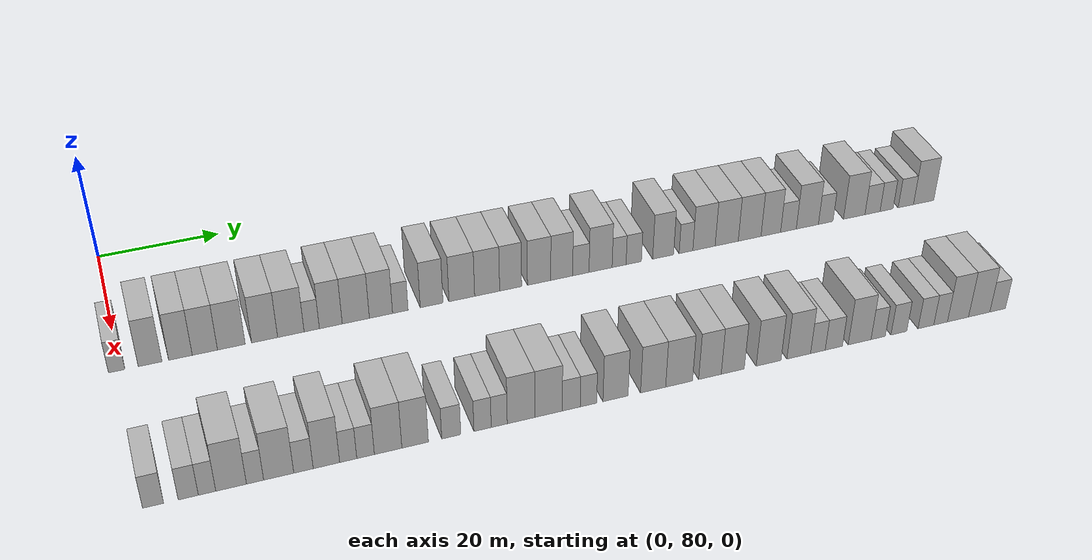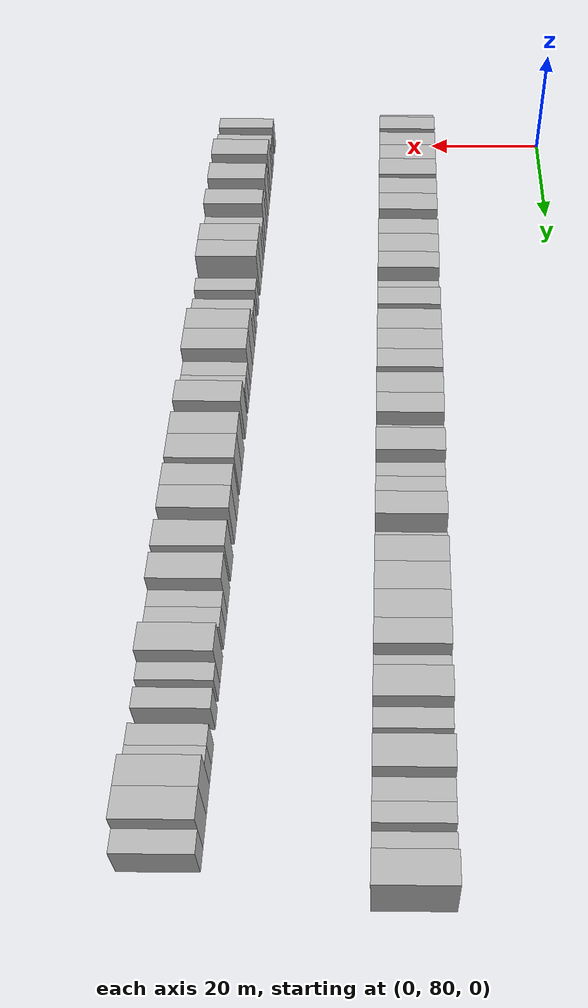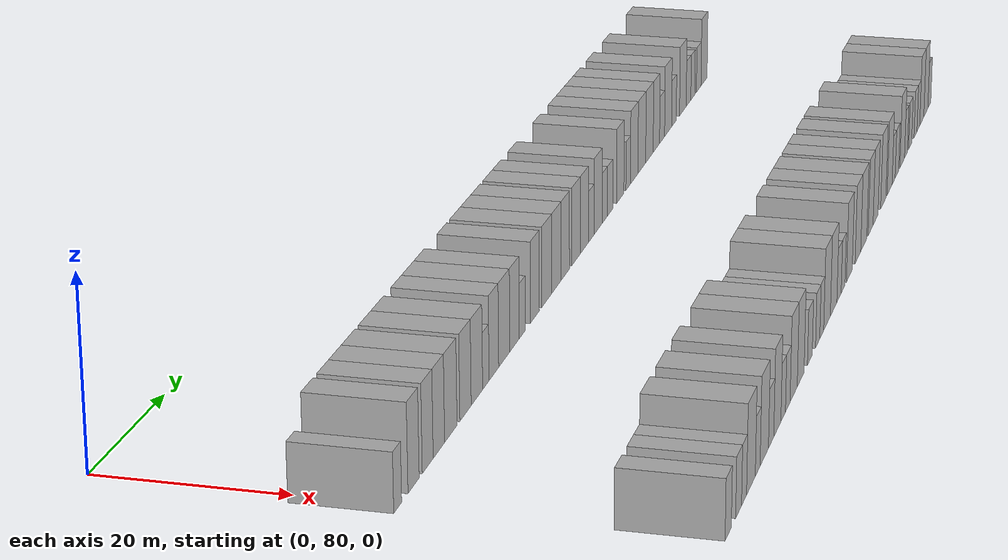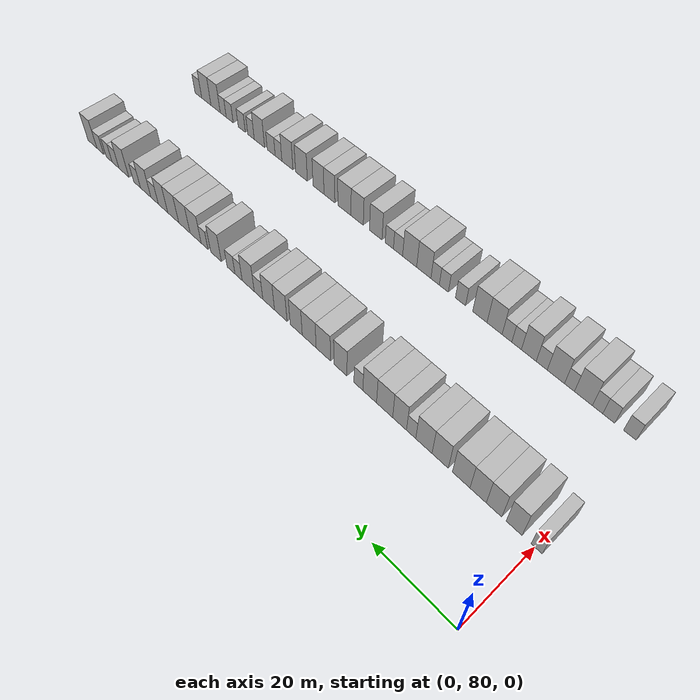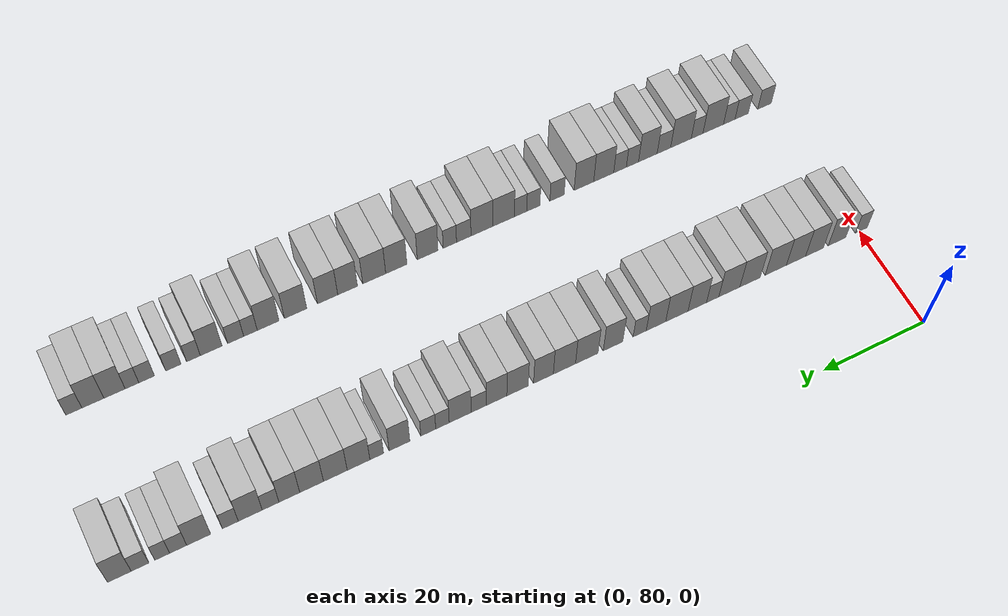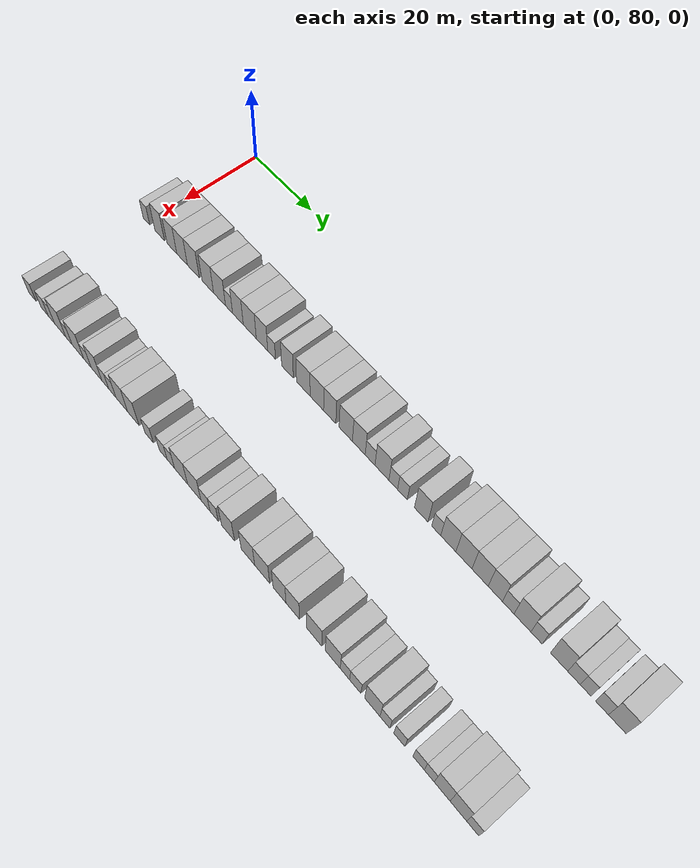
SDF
<sdf version="1.6">
 <world name="default">
  <model name="building_127">
   <static>1</static>
   <pose>25.0000 79.5850 0 0.000000 0.000000 0.000000</pose>
   <link name="link">
    <pose>0 0 3.00 0 0 0</pose>
    <collision name="collision"><geometry><box><size>10.0000 2.4742 6.0000</size></box></geometry></collision>
    <visual name="visual">
     <cast_shadows>0</cast_shadows>
     <geometry><box><size>10.0000 2.4742 6.0000</size></box></geometry>
     <material>
      <script>
       <uri>model://HANNAS_wall/materials/scripts</uri>
       <uri>model://HANNAS_wall/materials/textures</uri>
       <name>vrc/HANNAS_wall</name>
      </script>
     </material>
    </visual>
   </link>
  </model>
  <model name="building_128">
   <static>1</static>
   <pose>25.0000 84.6285 0 0.000000 0.000000 0.000000</pose>
   <link name="link">
    <pose>0 0 4.50 0 0 0</pose>
    <collision name="collision"><geometry><box><size>10.0000 3.6128 9.0000</size></box></geometry></collision>
    <visual name="visual">
     <cast_shadows>0</cast_shadows>
     <geometry><box><size>10.0000 3.6128 9.0000</size></box></geometry>
     <material>
      <script>
       <uri>model://HANNAS_wall/materials/scripts</uri>
       <uri>model://HANNAS_wall/materials/textures</uri>
       <name>vrc/HANNAS_wall</name>
      </script>
     </material>
    </visual>
   </link>
  </model>
  <model name="building_129">
   <static>1</static>
   <pose>25.0000 89.2453 0 0.000000 0.000000 0.000000</pose>
   <link name="link">
    <pose>0 0 4.50 0 0 0</pose>
    <collision name="collision"><geometry><box><size>10.0000 3.6209 9.0000</size></box></geometry></collision>
    <visual name="visual">
     <cast_shadows>0</cast_shadows>
     <geometry><box><size>10.0000 3.6209 9.0000</size></box></geometry>
     <material>
      <script>
       <uri>model://HANNAS_wall/materials/scripts</uri>
       <uri>model://HANNAS_wall/materials/textures</uri>
       <name>vrc/HANNAS_wall</name>
      </script>
     </material>
    </visual>
   </link>
  </model>
  <model name="building_130">
   <static>1</static>
   <pose>25.0000 93.0009 0 0.000000 0.000000 0.000000</pose>
   <link name="link">
    <pose>0 0 4.50 0 0 0</pose>
    <collision name="collision"><geometry><box><size>10.0000 3.8902 9.0000</size></box></geometry></collision>
    <visual name="visual">
     <cast_shadows>0</cast_shadows>
     <geometry><box><size>10.0000 3.8902 9.0000</size></box></geometry>
     <material>
      <script>
       <uri>model://HANNAS_wall/materials/scripts</uri>
       <uri>model://HANNAS_wall/materials/textures</uri>
       <name>vrc/HANNAS_wall</name>
      </script>
     </material>
    </visual>
   </link>
  </model>
  <model name="building_131">
   <static>1</static>
   <pose>25.0000 97.1014 0 0.000000 0.000000 0.000000</pose>
   <link name="link">
    <pose>0 0 4.50 0 0 0</pose>
    <collision name="collision"><geometry><box><size>10.0000 4.3108 9.0000</size></box></geometry></collision>
    <visual name="visual">
     <cast_shadows>0</cast_shadows>
     <geometry><box><size>10.0000 4.3108 9.0000</size></box></geometry>
     <material>
      <script>
       <uri>model://HANNAS_wall/materials/scripts</uri>
       <uri>model://HANNAS_wall/materials/textures</uri>
       <name>vrc/HANNAS_wall</name>
      </script>
     </material>
    </visual>
   </link>
  </model>
  <model name="building_132">
   <static>1</static>
   <pose>25.0000 102.2980 0 0.000000 0.000000 0.000000</pose>
   <link name="link">
    <pose>0 0 4.50 0 0 0</pose>
    <collision name="collision"><geometry><box><size>10.0000 4.0825 9.0000</size></box></geometry></collision>
    <visual name="visual">
     <cast_shadows>0</cast_shadows>
     <geometry><box><size>10.0000 4.0825 9.0000</size></box></geometry>
     <material>
      <script>
       <uri>model://HANNAS_wall/materials/scripts</uri>
       <uri>model://HANNAS_wall/materials/textures</uri>
       <name>vrc/HANNAS_wall</name>
      </script>
     </material>
    </visual>
   </link>
  </model>
  <model name="building_133">
   <static>1</static>
   <pose>25.0000 106.4385 0 0.000000 0.000000 0.000000</pose>
   <link name="link">
    <pose>0 0 4.50 0 0 0</pose>
    <collision name="collision"><geometry><box><size>10.0000 4.1985 9.0000</size></box></geometry></collision>
    <visual name="visual">
     <cast_shadows>0</cast_shadows>
     <geometry><box><size>10.0000 4.1985 9.0000</size></box></geometry>
     <material>
      <script>
       <uri>model://HANNAS_wall/materials/scripts</uri>
       <uri>model://HANNAS_wall/materials/textures</uri>
       <name>vrc/HANNAS_wall</name>
      </script>
     </material>
    </visual>
   </link>
  </model>
  <model name="building_134">
   <static>1</static>
   <pose>25.0000 109.7570 0 0.000000 0.000000 0.000000</pose>
   <link name="link">
    <pose>0 0 3.00 0 0 0</pose>
    <collision name="collision"><geometry><box><size>10.0000 2.4384 6.0000</size></box></geometry></collision>
    <visual name="visual">
     <cast_shadows>0</cast_shadows>
     <geometry><box><size>10.0000 2.4384 6.0000</size></box></geometry>
     <material>
      <script>
       <uri>model://HANNAS_wall/materials/scripts</uri>
       <uri>model://HANNAS_wall/materials/textures</uri>
       <name>vrc/HANNAS_wall</name>
      </script>
     </material>
    </visual>
   </link>
  </model>
  <model name="building_135">
   <static>1</static>
   <pose>25.0000 112.8140 0 0.000000 0.000000 0.000000</pose>
   <link name="link">
    <pose>0 0 4.50 0 0 0</pose>
    <collision name="collision"><geometry><box><size>10.0000 3.6756 9.0000</size></box></geometry></collision>
    <visual name="visual">
     <cast_shadows>0</cast_shadows>
     <geometry><box><size>10.0000 3.6756 9.0000</size></box></geometry>
     <material>
      <script>
       <uri>model://HANNAS_wall/materials/scripts</uri>
       <uri>model://HANNAS_wall/materials/textures</uri>
       <name>vrc/HANNAS_wall</name>
      </script>
     </material>
    </visual>
   </link>
  </model>
  <model name="building_136">
   <static>1</static>
   <pose>25.0000 116.8435 0 0.000000 0.000000 0.000000</pose>
   <link name="link">
    <pose>0 0 4.50 0 0 0</pose>
    <collision name="collision"><geometry><box><size>10.0000 4.3834 9.0000</size></box></geometry></collision>
    <visual name="visual">
     <cast_shadows>0</cast_shadows>
     <geometry><box><size>10.0000 4.3834 9.0000</size></box></geometry>
     <material>
      <script>
       <uri>model://HANNAS_wall/materials/scripts</uri>
       <uri>model://HANNAS_wall/materials/textures</uri>
       <name>vrc/HANNAS_wall</name>
      </script>
     </material>
    </visual>
   </link>
  </model>
  <model name="building_137">
   <static>1</static>
   <pose>25.0000 120.9303 0 0.000000 0.000000 0.000000</pose>
   <link name="link">
    <pose>0 0 4.50 0 0 0</pose>
    <collision name="collision"><geometry><box><size>10.0000 3.7903 9.0000</size></box></geometry></collision>
    <visual name="visual">
     <cast_shadows>0</cast_shadows>
     <geometry><box><size>10.0000 3.7903 9.0000</size></box></geometry>
     <material>
      <script>
       <uri>model://HANNAS_wall/materials/scripts</uri>
       <uri>model://HANNAS_wall/materials/textures</uri>
       <name>vrc/HANNAS_wall</name>
      </script>
     </material>
    </visual>
   </link>
  </model>
  <model name="building_138">
   <static>1</static>
   <pose>25.0000 124.0998 0 0.000000 0.000000 0.000000</pose>
   <link name="link">
    <pose>0 0 3.00 0 0 0</pose>
    <collision name="collision"><geometry><box><size>10.0000 2.5487 6.0000</size></box></geometry></collision>
    <visual name="visual">
     <cast_shadows>0</cast_shadows>
     <geometry><box><size>10.0000 2.5487 6.0000</size></box></geometry>
     <material>
      <script>
       <uri>model://HANNAS_wall/materials/scripts</uri>
       <uri>model://HANNAS_wall/materials/textures</uri>
       <name>vrc/HANNAS_wall</name>
      </script>
     </material>
    </visual>
   </link>
  </model>
  <model name="building_139">
   <static>1</static>
   <pose>25.0000 129.2617 0 0.000000 0.000000 0.000000</pose>
   <link name="link">
    <pose>0 0 4.50 0 0 0</pose>
    <collision name="collision"><geometry><box><size>10.0000 3.7751 9.0000</size></box></geometry></collision>
    <visual name="visual">
     <cast_shadows>0</cast_shadows>
     <geometry><box><size>10.0000 3.7751 9.0000</size></box></geometry>
     <material>
      <script>
       <uri>model://HANNAS_wall/materials/scripts</uri>
       <uri>model://HANNAS_wall/materials/textures</uri>
       <name>vrc/HANNAS_wall</name>
      </script>
     </material>
    </visual>
   </link>
  </model>
  <model name="building_140">
   <static>1</static>
   <pose>25.0000 134.3005 0 0.000000 0.000000 0.000000</pose>
   <link name="link">
    <pose>0 0 4.50 0 0 0</pose>
    <collision name="collision"><geometry><box><size>10.0000 4.3025 9.0000</size></box></geometry></collision>
    <visual name="visual">
     <cast_shadows>0</cast_shadows>
     <geometry><box><size>10.0000 4.3025 9.0000</size></box></geometry>
     <material>
      <script>
       <uri>model://HANNAS_wall/materials/scripts</uri>
       <uri>model://HANNAS_wall/materials/textures</uri>
       <name>vrc/HANNAS_wall</name>
      </script>
     </material>
    </visual>
   </link>
  </model>
  <model name="building_141">
   <static>1</static>
   <pose>25.0000 138.5611 0 0.000000 0.000000 0.000000</pose>
   <link name="link">
    <pose>0 0 4.50 0 0 0</pose>
    <collision name="collision"><geometry><box><size>10.0000 4.2187 9.0000</size></box></geometry></collision>
    <visual name="visual">
     <cast_shadows>0</cast_shadows>
     <geometry><box><size>10.0000 4.2187 9.0000</size></box></geometry>
     <material>
      <script>
       <uri>model://HANNAS_wall/materials/scripts</uri>
       <uri>model://HANNAS_wall/materials/textures</uri>
       <name>vrc/HANNAS_wall</name>
      </script>
     </material>
    </visual>
   </link>
  </model>
  <model name="building_142">
   <static>1</static>
   <pose>25.0000 142.5398 0 0.000000 0.000000 0.000000</pose>
   <link name="link">
    <pose>0 0 4.50 0 0 0</pose>
    <collision name="collision"><geometry><box><size>10.0000 3.7387 9.0000</size></box></geometry></collision>
    <visual name="visual">
     <cast_shadows>0</cast_shadows>
     <geometry><box><size>10.0000 3.7387 9.0000</size></box></geometry>
     <material>
      <script>
       <uri>model://HANNAS_wall/materials/scripts</uri>
       <uri>model://HANNAS_wall/materials/textures</uri>
       <name>vrc/HANNAS_wall</name>
      </script>
     </material>
    </visual>
   </link>
  </model>
  <model name="building_143">
   <static>1</static>
   <pose>25.0000 147.4133 0 0.000000 0.000000 0.000000</pose>
   <link name="link">
    <pose>0 0 4.50 0 0 0</pose>
    <collision name="collision"><geometry><box><size>10.0000 4.0082 9.0000</size></box></geometry></collision>
    <visual name="visual">
     <cast_shadows>0</cast_shadows>
     <geometry><box><size>10.0000 4.0082 9.0000</size></box></geometry>
     <material>
      <script>
       <uri>model://HANNAS_wall/materials/scripts</uri>
       <uri>model://HANNAS_wall/materials/textures</uri>
       <name>vrc/HANNAS_wall</name>
      </script>
     </material>
    </visual>
   </link>
  </model>
  <model name="building_144">
   <static>1</static>
   <pose>25.0000 151.3130 0 0.000000 0.000000 0.000000</pose>
   <link name="link">
    <pose>0 0 4.50 0 0 0</pose>
    <collision name="collision"><geometry><box><size>10.0000 3.7913 9.0000</size></box></geometry></collision>
    <visual name="visual">
     <cast_shadows>0</cast_shadows>
     <geometry><box><size>10.0000 3.7913 9.0000</size></box></geometry>
     <material>
      <script>
       <uri>model://HANNAS_wall/materials/scripts</uri>
       <uri>model://HANNAS_wall/materials/textures</uri>
       <name>vrc/HANNAS_wall</name>
      </script>
     </material>
    </visual>
   </link>
  </model>
  <model name="building_145">
   <static>1</static>
   <pose>25.0000 154.6376 0 0.000000 0.000000 0.000000</pose>
   <link name="link">
    <pose>0 0 3.00 0 0 0</pose>
    <collision name="collision"><geometry><box><size>10.0000 2.8580 6.0000</size></box></geometry></collision>
    <visual name="visual">
     <cast_shadows>0</cast_shadows>
     <geometry><box><size>10.0000 2.8580 6.0000</size></box></geometry>
     <material>
      <script>
       <uri>model://HANNAS_wall/materials/scripts</uri>
       <uri>model://HANNAS_wall/materials/textures</uri>
       <name>vrc/HANNAS_wall</name>
      </script>
     </material>
    </visual>
   </link>
  </model>
  <model name="building_146">
   <static>1</static>
   <pose>25.0000 158.0905 0 0.000000 0.000000 0.000000</pose>
   <link name="link">
    <pose>0 0 4.50 0 0 0</pose>
    <collision name="collision"><geometry><box><size>10.0000 4.0477 9.0000</size></box></geometry></collision>
    <visual name="visual">
     <cast_shadows>0</cast_shadows>
     <geometry><box><size>10.0000 4.0477 9.0000</size></box></geometry>
     <material>
      <script>
       <uri>model://HANNAS_wall/materials/scripts</uri>
       <uri>model://HANNAS_wall/materials/textures</uri>
       <name>vrc/HANNAS_wall</name>
      </script>
     </material>
    </visual>
   </link>
  </model>
  <model name="building_147">
   <static>1</static>
   <pose>25.0000 161.3492 0 0.000000 0.000000 0.000000</pose>
   <link name="link">
    <pose>0 0 3.00 0 0 0</pose>
    <collision name="collision"><geometry><box><size>10.0000 2.4698 6.0000</size></box></geometry></collision>
    <visual name="visual">
     <cast_shadows>0</cast_shadows>
     <geometry><box><size>10.0000 2.4698 6.0000</size></box></geometry>
     <material>
      <script>
       <uri>model://HANNAS_wall/materials/scripts</uri>
       <uri>model://HANNAS_wall/materials/textures</uri>
       <name>vrc/HANNAS_wall</name>
      </script>
     </material>
    </visual>
   </link>
  </model>
  <model name="building_148">
   <static>1</static>
   <pose>25.0000 163.9475 0 0.000000 0.000000 0.000000</pose>
   <link name="link">
    <pose>0 0 3.00 0 0 0</pose>
    <collision name="collision"><geometry><box><size>10.0000 2.7268 6.0000</size></box></geometry></collision>
    <visual name="visual">
     <cast_shadows>0</cast_shadows>
     <geometry><box><size>10.0000 2.7268 6.0000</size></box></geometry>
     <material>
      <script>
       <uri>model://HANNAS_wall/materials/scripts</uri>
       <uri>model://HANNAS_wall/materials/textures</uri>
       <name>vrc/HANNAS_wall</name>
      </script>
     </material>
    </visual>
   </link>
  </model>
  <model name="building_149">
   <static>1</static>
   <pose>25.0000 169.1902 0 0.000000 0.000000 0.000000</pose>
   <link name="link">
    <pose>0 0 4.50 0 0 0</pose>
    <collision name="collision"><geometry><box><size>10.0000 3.7587 9.0000</size></box></geometry></collision>
    <visual name="visual">
     <cast_shadows>0</cast_shadows>
     <geometry><box><size>10.0000 3.7587 9.0000</size></box></geometry>
     <material>
      <script>
       <uri>model://HANNAS_wall/materials/scripts</uri>
       <uri>model://HANNAS_wall/materials/textures</uri>
       <name>vrc/HANNAS_wall</name>
      </script>
     </material>
    </visual>
   </link>
  </model>
  <model name="building_150">
   <static>1</static>
   <pose>25.0000 173.3050 0 0.000000 0.000000 0.000000</pose>
   <link name="link">
    <pose>0 0 3.00 0 0 0</pose>
    <collision name="collision"><geometry><box><size>10.0000 2.4708 6.0000</size></box></geometry></collision>
    <visual name="visual">
     <cast_shadows>0</cast_shadows>
     <geometry><box><size>10.0000 2.4708 6.0000</size></box></geometry>
     <material>
      <script>
       <uri>model://HANNAS_wall/materials/scripts</uri>
       <uri>model://HANNAS_wall/materials/textures</uri>
       <name>vrc/HANNAS_wall</name>
      </script>
     </material>
    </visual>
   </link>
  </model>
  <model name="building_151">
   <static>1</static>
   <pose>25.0000 176.5717 0 0.000000 0.000000 0.000000</pose>
   <link name="link">
    <pose>0 0 4.50 0 0 0</pose>
    <collision name="collision"><geometry><box><size>10.0000 4.0626 9.0000</size></box></geometry></collision>
    <visual name="visual">
     <cast_shadows>0</cast_shadows>
     <geometry><box><size>10.0000 4.0626 9.0000</size></box></geometry>
     <material>
      <script>
       <uri>model://HANNAS_wall/materials/scripts</uri>
       <uri>model://HANNAS_wall/materials/textures</uri>
       <name>vrc/HANNAS_wall</name>
      </script>
     </material>
    </visual>
   </link>
  </model>
  <model name="building_152">
   <static>1</static>
   <pose>25.0000 180.7204 0 0.000000 0.000000 0.000000</pose>
   <link name="link">
    <pose>0 0 4.50 0 0 0</pose>
    <collision name="collision"><geometry><box><size>10.0000 4.2348 9.0000</size></box></geometry></collision>
    <visual name="visual">
     <cast_shadows>0</cast_shadows>
     <geometry><box><size>10.0000 4.2348 9.0000</size></box></geometry>
     <material>
      <script>
       <uri>model://HANNAS_wall/materials/scripts</uri>
       <uri>model://HANNAS_wall/materials/textures</uri>
       <name>vrc/HANNAS_wall</name>
      </script>
     </material>
    </visual>
   </link>
  </model>
  <model name="building_153">
   <static>1</static>
   <pose>25.0000 184.9420 0 0.000000 0.000000 0.000000</pose>
   <link name="link">
    <pose>0 0 4.50 0 0 0</pose>
    <collision name="collision"><geometry><box><size>10.0000 4.2084 9.0000</size></box></geometry></collision>
    <visual name="visual">
     <cast_shadows>0</cast_shadows>
     <geometry><box><size>10.0000 4.2084 9.0000</size></box></geometry>
     <material>
      <script>
       <uri>model://HANNAS_wall/materials/scripts</uri>
       <uri>model://HANNAS_wall/materials/textures</uri>
       <name>vrc/HANNAS_wall</name>
      </script>
     </material>
    </visual>
   </link>
  </model>
  <model name="building_154">
   <static>1</static>
   <pose>25.0000 188.8700 0 0.000000 0.000000 0.000000</pose>
   <link name="link">
    <pose>0 0 4.50 0 0 0</pose>
    <collision name="collision"><geometry><box><size>10.0000 3.6476 9.0000</size></box></geometry></collision>
    <visual name="visual">
     <cast_shadows>0</cast_shadows>
     <geometry><box><size>10.0000 3.6476 9.0000</size></box></geometry>
     <material>
      <script>
       <uri>model://HANNAS_wall/materials/scripts</uri>
       <uri>model://HANNAS_wall/materials/textures</uri>
       <name>vrc/HANNAS_wall</name>
      </script>
     </material>
    </visual>
   </link>
  </model>
  <model name="building_155">
   <static>1</static>
   <pose>25.0000 192.1604 0 0.000000 0.000000 0.000000</pose>
   <link name="link">
    <pose>0 0 3.00 0 0 0</pose>
    <collision name="collision"><geometry><box><size>10.0000 2.9331 6.0000</size></box></geometry></collision>
    <visual name="visual">
     <cast_shadows>0</cast_shadows>
     <geometry><box><size>10.0000 2.9331 6.0000</size></box></geometry>
     <material>
      <script>
       <uri>model://HANNAS_wall/materials/scripts</uri>
       <uri>model://HANNAS_wall/materials/textures</uri>
       <name>vrc/HANNAS_wall</name>
      </script>
     </material>
    </visual>
   </link>
  </model>
  <model name="building_156">
   <static>1</static>
   <pose>25.0000 195.7131 0 0.000000 0.000000 0.000000</pose>
   <link name="link">
    <pose>0 0 4.50 0 0 0</pose>
    <collision name="collision"><geometry><box><size>10.0000 4.1723 9.0000</size></box></geometry></collision>
    <visual name="visual">
     <cast_shadows>0</cast_shadows>
     <geometry><box><size>10.0000 4.1723 9.0000</size></box></geometry>
     <material>
      <script>
       <uri>model://HANNAS_wall/materials/scripts</uri>
       <uri>model://HANNAS_wall/materials/textures</uri>
       <name>vrc/HANNAS_wall</name>
      </script>
     </material>
    </visual>
   </link>
  </model>
  <model name="building_157">
   <static>1</static>
   <pose>25.0000 199.1836 0 0.000000 0.000000 0.000000</pose>
   <link name="link">
    <pose>0 0 3.00 0 0 0</pose>
    <collision name="collision"><geometry><box><size>10.0000 2.7688 6.0000</size></box></geometry></collision>
    <visual name="visual">
     <cast_shadows>0</cast_shadows>
     <geometry><box><size>10.0000 2.7688 6.0000</size></box></geometry>
     <material>
      <script>
       <uri>model://HANNAS_wall/materials/scripts</uri>
       <uri>model://HANNAS_wall/materials/textures</uri>
       <name>vrc/HANNAS_wall</name>
      </script>
     </material>
    </visual>
   </link>
  </model>
  <model name="building_158">
   <static>1</static>
   <pose>25.0000 204.6273 0 0.000000 0.000000 0.000000</pose>
   <link name="link">
    <pose>0 0 4.50 0 0 0</pose>
    <collision name="collision"><geometry><box><size>10.0000 4.1186 9.0000</size></box></geometry></collision>
    <visual name="visual">
     <cast_shadows>0</cast_shadows>
     <geometry><box><size>10.0000 4.1186 9.0000</size></box></geometry>
     <material>
      <script>
       <uri>model://HANNAS_wall/materials/scripts</uri>
       <uri>model://HANNAS_wall/materials/textures</uri>
       <name>vrc/HANNAS_wall</name>
      </script>
     </material>
    </visual>
   </link>
  </model>
  <model name="building_159">
   <static>1</static>
   <pose>25.0000 208.1387 0 0.000000 0.000000 0.000000</pose>
   <link name="link">
    <pose>0 0 3.00 0 0 0</pose>
    <collision name="collision"><geometry><box><size>10.0000 2.9042 6.0000</size></box></geometry></collision>
    <visual name="visual">
     <cast_shadows>0</cast_shadows>
     <geometry><box><size>10.0000 2.9042 6.0000</size></box></geometry>
     <material>
      <script>
       <uri>model://HANNAS_wall/materials/scripts</uri>
       <uri>model://HANNAS_wall/materials/textures</uri>
       <name>vrc/HANNAS_wall</name>
      </script>
     </material>
    </visual>
   </link>
  </model>
  <model name="building_160">
   <static>1</static>
   <pose>25.0000 210.8582 0 0.000000 0.000000 0.000000</pose>
   <link name="link">
    <pose>0 0 3.00 0 0 0</pose>
    <collision name="collision"><geometry><box><size>10.0000 2.5348 6.0000</size></box></geometry></collision>
    <visual name="visual">
     <cast_shadows>0</cast_shadows>
     <geometry><box><size>10.0000 2.5348 6.0000</size></box></geometry>
     <material>
      <script>
       <uri>model://HANNAS_wall/materials/scripts</uri>
       <uri>model://HANNAS_wall/materials/textures</uri>
       <name>vrc/HANNAS_wall</name>
      </script>
     </material>
    </visual>
   </link>
  </model>
  <model name="building_161">
   <static>1</static>
   <pose>25.0000 214.6167 0 0.000000 0.000000 0.000000</pose>
   <link name="link">
    <pose>0 0 3.00 0 0 0</pose>
    <collision name="collision"><geometry><box><size>10.0000 2.9821 6.0000</size></box></geometry></collision>
    <visual name="visual">
     <cast_shadows>0</cast_shadows>
     <geometry><box><size>10.0000 2.9821 6.0000</size></box></geometry>
     <material>
      <script>
       <uri>model://HANNAS_wall/materials/scripts</uri>
       <uri>model://HANNAS_wall/materials/textures</uri>
       <name>vrc/HANNAS_wall</name>
      </script>
     </material>
    </visual>
   </link>
  </model>
  <model name="building_162">
   <static>1</static>
   <pose>25.0000 218.1008 0 0.000000 0.000000 0.000000</pose>
   <link name="link">
    <pose>0 0 4.50 0 0 0</pose>
    <collision name="collision"><geometry><box><size>10.0000 3.9860 9.0000</size></box></geometry></collision>
    <visual name="visual">
     <cast_shadows>0</cast_shadows>
     <geometry><box><size>10.0000 3.9860 9.0000</size></box></geometry>
     <material>
      <script>
       <uri>model://HANNAS_wall/materials/scripts</uri>
       <uri>model://HANNAS_wall/materials/textures</uri>
       <name>vrc/HANNAS_wall</name>
      </script>
     </material>
    </visual>
   </link>
  </model>
  <model name="building_364">
   <static>1</static>
   <pose>55.0000 81.0860 0 0.000000 0.000000 0.000000</pose>
   <link name="link">
    <pose>0 0 3.00 0 0 0</pose>
    <collision name="collision"><geometry><box><size>10.0000 2.8923 6.0000</size></box></geometry></collision>
    <visual name="visual">
     <cast_shadows>0</cast_shadows>
     <geometry><box><size>10.0000 2.8923 6.0000</size></box></geometry>
     <material>
      <script>
       <uri>model://HANNAS_wall/materials/scripts</uri>
       <uri>model://HANNAS_wall/materials/textures</uri>
       <name>vrc/HANNAS_wall</name>
      </script>
     </material>
    </visual>
   </link>
  </model>
  <model name="building_365">
   <static>1</static>
   <pose>55.0000 85.9309 0 0.000000 0.000000 0.000000</pose>
   <link name="link">
    <pose>0 0 3.00 0 0 0</pose>
    <collision name="collision"><geometry><box><size>10.0000 2.7976 6.0000</size></box></geometry></collision>
    <visual name="visual">
     <cast_shadows>0</cast_shadows>
     <geometry><box><size>10.0000 2.7976 6.0000</size></box></geometry>
     <material>
      <script>
       <uri>model://HANNAS_wall/materials/scripts</uri>
       <uri>model://HANNAS_wall/materials/textures</uri>
       <name>vrc/HANNAS_wall</name>
      </script>
     </material>
    </visual>
   </link>
  </model>
  <model name="building_366">
   <static>1</static>
   <pose>55.0000 88.5434 0 0.000000 0.000000 0.000000</pose>
   <link name="link">
    <pose>0 0 3.00 0 0 0</pose>
    <collision name="collision"><geometry><box><size>10.0000 2.4273 6.0000</size></box></geometry></collision>
    <visual name="visual">
     <cast_shadows>0</cast_shadows>
     <geometry><box><size>10.0000 2.4273 6.0000</size></box></geometry>
     <material>
      <script>
       <uri>model://HANNAS_wall/materials/scripts</uri>
       <uri>model://HANNAS_wall/materials/textures</uri>
       <name>vrc/HANNAS_wall</name>
      </script>
     </material>
    </visual>
   </link>
  </model>
  <model name="building_367">
   <static>1</static>
   <pose>55.0000 91.9101 0 0.000000 0.000000 0.000000</pose>
   <link name="link">
    <pose>0 0 4.50 0 0 0</pose>
    <collision name="collision"><geometry><box><size>10.0000 4.3062 9.0000</size></box></geometry></collision>
    <visual name="visual">
     <cast_shadows>0</cast_shadows>
     <geometry><box><size>10.0000 4.3062 9.0000</size></box></geometry>
     <material>
      <script>
       <uri>model://HANNAS_wall/materials/scripts</uri>
       <uri>model://HANNAS_wall/materials/textures</uri>
       <name>vrc/HANNAS_wall</name>
      </script>
     </material>
    </visual>
   </link>
  </model>
  <model name="building_368">
   <static>1</static>
   <pose>55.0000 95.2799 0 0.000000 0.000000 0.000000</pose>
   <link name="link">
    <pose>0 0 3.00 0 0 0</pose>
    <collision name="collision"><geometry><box><size>10.0000 2.4334 6.0000</size></box></geometry></collision>
    <visual name="visual">
     <cast_shadows>0</cast_shadows>
     <geometry><box><size>10.0000 2.4334 6.0000</size></box></geometry>
     <material>
      <script>
       <uri>model://HANNAS_wall/materials/scripts</uri>
       <uri>model://HANNAS_wall/materials/textures</uri>
       <name>vrc/HANNAS_wall</name>
      </script>
     </material>
    </visual>
   </link>
  </model>
  <model name="building_369">
   <static>1</static>
   <pose>55.0000 98.6441 0 0.000000 0.000000 0.000000</pose>
   <link name="link">
    <pose>0 0 4.50 0 0 0</pose>
    <collision name="collision"><geometry><box><size>10.0000 4.2950 9.0000</size></box></geometry></collision>
    <visual name="visual">
     <cast_shadows>0</cast_shadows>
     <geometry><box><size>10.0000 4.2950 9.0000</size></box></geometry>
     <material>
      <script>
       <uri>model://HANNAS_wall/materials/scripts</uri>
       <uri>model://HANNAS_wall/materials/textures</uri>
       <name>vrc/HANNAS_wall</name>
      </script>
     </material>
    </visual>
   </link>
  </model>
  <model name="building_370">
   <static>1</static>
   <pose>55.0000 102.1893 0 0.000000 0.000000 0.000000</pose>
   <link name="link">
    <pose>0 0 3.00 0 0 0</pose>
    <collision name="collision"><geometry><box><size>10.0000 2.7954 6.0000</size></box></geometry></collision>
    <visual name="visual">
     <cast_shadows>0</cast_shadows>
     <geometry><box><size>10.0000 2.7954 6.0000</size></box></geometry>
     <material>
      <script>
       <uri>model://HANNAS_wall/materials/scripts</uri>
       <uri>model://HANNAS_wall/materials/textures</uri>
       <name>vrc/HANNAS_wall</name>
      </script>
     </material>
    </visual>
   </link>
  </model>
  <model name="building_371">
   <static>1</static>
   <pose>55.0000 105.5017 0 0.000000 0.000000 0.000000</pose>
   <link name="link">
    <pose>0 0 4.50 0 0 0</pose>
    <collision name="collision"><geometry><box><size>10.0000 3.8294 9.0000</size></box></geometry></collision>
    <visual name="visual">
     <cast_shadows>0</cast_shadows>
     <geometry><box><size>10.0000 3.8294 9.0000</size></box></geometry>
     <material>
      <script>
       <uri>model://HANNAS_wall/materials/scripts</uri>
       <uri>model://HANNAS_wall/materials/textures</uri>
       <name>vrc/HANNAS_wall</name>
      </script>
     </material>
    </visual>
   </link>
  </model>
  <model name="building_372">
   <static>1</static>
   <pose>55.0000 108.6637 0 0.000000 0.000000 0.000000</pose>
   <link name="link">
    <pose>0 0 3.00 0 0 0</pose>
    <collision name="collision"><geometry><box><size>10.0000 2.4946 6.0000</size></box></geometry></collision>
    <visual name="visual">
     <cast_shadows>0</cast_shadows>
     <geometry><box><size>10.0000 2.4946 6.0000</size></box></geometry>
     <material>
      <script>
       <uri>model://HANNAS_wall/materials/scripts</uri>
       <uri>model://HANNAS_wall/materials/textures</uri>
       <name>vrc/HANNAS_wall</name>
      </script>
     </material>
    </visual>
   </link>
  </model>
  <model name="building_373">
   <static>1</static>
   <pose>55.0000 111.2016 0 0.000000 0.000000 0.000000</pose>
   <link name="link">
    <pose>0 0 3.00 0 0 0</pose>
    <collision name="collision"><geometry><box><size>10.0000 2.5813 6.0000</size></box></geometry></collision>
    <visual name="visual">
     <cast_shadows>0</cast_shadows>
     <geometry><box><size>10.0000 2.5813 6.0000</size></box></geometry>
     <material>
      <script>
       <uri>model://HANNAS_wall/materials/scripts</uri>
       <uri>model://HANNAS_wall/materials/textures</uri>
       <name>vrc/HANNAS_wall</name>
      </script>
     </material>
    </visual>
   </link>
  </model>
  <model name="building_374">
   <static>1</static>
   <pose>55.0000 114.5230 0 0.000000 0.000000 0.000000</pose>
   <link name="link">
    <pose>0 0 4.50 0 0 0</pose>
    <collision name="collision"><geometry><box><size>10.0000 4.0616 9.0000</size></box></geometry></collision>
    <visual name="visual">
     <cast_shadows>0</cast_shadows>
     <geometry><box><size>10.0000 4.0616 9.0000</size></box></geometry>
     <material>
      <script>
       <uri>model://HANNAS_wall/materials/scripts</uri>
       <uri>model://HANNAS_wall/materials/textures</uri>
       <name>vrc/HANNAS_wall</name>
      </script>
     </material>
    </visual>
   </link>
  </model>
  <model name="building_375">
   <static>1</static>
   <pose>55.0000 118.5301 0 0.000000 0.000000 0.000000</pose>
   <link name="link">
    <pose>0 0 4.50 0 0 0</pose>
    <collision name="collision"><geometry><box><size>10.0000 3.9526 9.0000</size></box></geometry></collision>
    <visual name="visual">
     <cast_shadows>0</cast_shadows>
     <geometry><box><size>10.0000 3.9526 9.0000</size></box></geometry>
     <material>
      <script>
       <uri>model://HANNAS_wall/materials/scripts</uri>
       <uri>model://HANNAS_wall/materials/textures</uri>
       <name>vrc/HANNAS_wall</name>
      </script>
     </material>
    </visual>
   </link>
  </model>
  <model name="building_376">
   <static>1</static>
   <pose>55.0000 123.9421 0 0.000000 0.000000 0.000000</pose>
   <link name="link">
    <pose>0 0 3.00 0 0 0</pose>
    <collision name="collision"><geometry><box><size>10.0000 2.8714 6.0000</size></box></geometry></collision>
    <visual name="visual">
     <cast_shadows>0</cast_shadows>
     <geometry><box><size>10.0000 2.8714 6.0000</size></box></geometry>
     <material>
      <script>
       <uri>model://HANNAS_wall/materials/scripts</uri>
       <uri>model://HANNAS_wall/materials/textures</uri>
       <name>vrc/HANNAS_wall</name>
      </script>
     </material>
    </visual>
   </link>
  </model>
  <model name="building_377">
   <static>1</static>
   <pose>55.0000 128.6907 0 0.000000 0.000000 0.000000</pose>
   <link name="link">
    <pose>0 0 3.00 0 0 0</pose>
    <collision name="collision"><geometry><box><size>10.0000 2.6257 6.0000</size></box></geometry></collision>
    <visual name="visual">
     <cast_shadows>0</cast_shadows>
     <geometry><box><size>10.0000 2.6257 6.0000</size></box></geometry>
     <material>
      <script>
       <uri>model://HANNAS_wall/materials/scripts</uri>
       <uri>model://HANNAS_wall/materials/textures</uri>
       <name>vrc/HANNAS_wall</name>
      </script>
     </material>
    </visual>
   </link>
  </model>
  <model name="building_378">
   <static>1</static>
   <pose>55.0000 131.2315 0 0.000000 0.000000 0.000000</pose>
   <link name="link">
    <pose>0 0 3.00 0 0 0</pose>
    <collision name="collision"><geometry><box><size>10.0000 2.4560 6.0000</size></box></geometry></collision>
    <visual name="visual">
     <cast_shadows>0</cast_shadows>
     <geometry><box><size>10.0000 2.4560 6.0000</size></box></geometry>
     <material>
      <script>
       <uri>model://HANNAS_wall/materials/scripts</uri>
       <uri>model://HANNAS_wall/materials/textures</uri>
       <name>vrc/HANNAS_wall</name>
      </script>
     </material>
    </visual>
   </link>
  </model>
  <model name="building_379">
   <static>1</static>
   <pose>55.0000 134.5858 0 0.000000 0.000000 0.000000</pose>
   <link name="link">
    <pose>0 0 4.50 0 0 0</pose>
    <collision name="collision"><geometry><box><size>10.0000 4.2526 9.0000</size></box></geometry></collision>
    <visual name="visual">
     <cast_shadows>0</cast_shadows>
     <geometry><box><size>10.0000 4.2526 9.0000</size></box></geometry>
     <material>
      <script>
       <uri>model://HANNAS_wall/materials/scripts</uri>
       <uri>model://HANNAS_wall/materials/textures</uri>
       <name>vrc/HANNAS_wall</name>
      </script>
     </material>
    </visual>
   </link>
  </model>
  <model name="building_380">
   <static>1</static>
   <pose>55.0000 138.8490 0 0.000000 0.000000 0.000000</pose>
   <link name="link">
    <pose>0 0 4.50 0 0 0</pose>
    <collision name="collision"><geometry><box><size>10.0000 4.2738 9.0000</size></box></geometry></collision>
    <visual name="visual">
     <cast_shadows>0</cast_shadows>
     <geometry><box><size>10.0000 4.2738 9.0000</size></box></geometry>
     <material>
      <script>
       <uri>model://HANNAS_wall/materials/scripts</uri>
       <uri>model://HANNAS_wall/materials/textures</uri>
       <name>vrc/HANNAS_wall</name>
      </script>
     </material>
    </visual>
   </link>
  </model>
  <model name="building_381">
   <static>1</static>
   <pose>55.0000 142.3966 0 0.000000 0.000000 0.000000</pose>
   <link name="link">
    <pose>0 0 3.00 0 0 0</pose>
    <collision name="collision"><geometry><box><size>10.0000 2.8215 6.0000</size></box></geometry></collision>
    <visual name="visual">
     <cast_shadows>0</cast_shadows>
     <geometry><box><size>10.0000 2.8215 6.0000</size></box></geometry>
     <material>
      <script>
       <uri>model://HANNAS_wall/materials/scripts</uri>
       <uri>model://HANNAS_wall/materials/textures</uri>
       <name>vrc/HANNAS_wall</name>
      </script>
     </material>
    </visual>
   </link>
  </model>
  <model name="building_382">
   <static>1</static>
   <pose>55.0000 145.1033 0 0.000000 0.000000 0.000000</pose>
   <link name="link">
    <pose>0 0 3.00 0 0 0</pose>
    <collision name="collision"><geometry><box><size>10.0000 2.5919 6.0000</size></box></geometry></collision>
    <visual name="visual">
     <cast_shadows>0</cast_shadows>
     <geometry><box><size>10.0000 2.5919 6.0000</size></box></geometry>
     <material>
      <script>
       <uri>model://HANNAS_wall/materials/scripts</uri>
       <uri>model://HANNAS_wall/materials/textures</uri>
       <name>vrc/HANNAS_wall</name>
      </script>
     </material>
    </visual>
   </link>
  </model>
  <model name="building_383">
   <static>1</static>
   <pose>55.0000 149.4027 0 0.000000 0.000000 0.000000</pose>
   <link name="link">
    <pose>0 0 4.50 0 0 0</pose>
    <collision name="collision"><geometry><box><size>10.0000 4.0070 9.0000</size></box></geometry></collision>
    <visual name="visual">
     <cast_shadows>0</cast_shadows>
     <geometry><box><size>10.0000 4.0070 9.0000</size></box></geometry>
     <material>
      <script>
       <uri>model://HANNAS_wall/materials/scripts</uri>
       <uri>model://HANNAS_wall/materials/textures</uri>
       <name>vrc/HANNAS_wall</name>
      </script>
     </material>
    </visual>
   </link>
  </model>
  <model name="building_384">
   <static>1</static>
   <pose>55.0000 155.4330 0 0.000000 0.000000 0.000000</pose>
   <link name="link">
    <pose>0 0 4.50 0 0 0</pose>
    <collision name="collision"><geometry><box><size>10.0000 4.0535 9.0000</size></box></geometry></collision>
    <visual name="visual">
     <cast_shadows>0</cast_shadows>
     <geometry><box><size>10.0000 4.0535 9.0000</size></box></geometry>
     <material>
      <script>
       <uri>model://HANNAS_wall/materials/scripts</uri>
       <uri>model://HANNAS_wall/materials/textures</uri>
       <name>vrc/HANNAS_wall</name>
      </script>
     </material>
    </visual>
   </link>
  </model>
  <model name="building_385">
   <static>1</static>
   <pose>55.0000 159.6480 0 0.000000 0.000000 0.000000</pose>
   <link name="link">
    <pose>0 0 4.50 0 0 0</pose>
    <collision name="collision"><geometry><box><size>10.0000 4.3766 9.0000</size></box></geometry></collision>
    <visual name="visual">
     <cast_shadows>0</cast_shadows>
     <geometry><box><size>10.0000 4.3766 9.0000</size></box></geometry>
     <material>
      <script>
       <uri>model://HANNAS_wall/materials/scripts</uri>
       <uri>model://HANNAS_wall/materials/textures</uri>
       <name>vrc/HANNAS_wall</name>
      </script>
     </material>
    </visual>
   </link>
  </model>
  <model name="building_386">
   <static>1</static>
   <pose>55.0000 164.6965 0 0.000000 0.000000 0.000000</pose>
   <link name="link">
    <pose>0 0 4.50 0 0 0</pose>
    <collision name="collision"><geometry><box><size>10.0000 3.7203 9.0000</size></box></geometry></collision>
    <visual name="visual">
     <cast_shadows>0</cast_shadows>
     <geometry><box><size>10.0000 3.7203 9.0000</size></box></geometry>
     <material>
      <script>
       <uri>model://HANNAS_wall/materials/scripts</uri>
       <uri>model://HANNAS_wall/materials/textures</uri>
       <name>vrc/HANNAS_wall</name>
      </script>
     </material>
    </visual>
   </link>
  </model>
  <model name="building_387">
   <static>1</static>
   <pose>55.0000 168.4637 0 0.000000 0.000000 0.000000</pose>
   <link name="link">
    <pose>0 0 4.50 0 0 0</pose>
    <collision name="collision"><geometry><box><size>10.0000 3.8142 9.0000</size></box></geometry></collision>
    <visual name="visual">
     <cast_shadows>0</cast_shadows>
     <geometry><box><size>10.0000 3.8142 9.0000</size></box></geometry>
     <material>
      <script>
       <uri>model://HANNAS_wall/materials/scripts</uri>
       <uri>model://HANNAS_wall/materials/textures</uri>
       <name>vrc/HANNAS_wall</name>
      </script>
     </material>
    </visual>
   </link>
  </model>
  <model name="building_388">
   <static>1</static>
   <pose>55.0000 174.4509 0 0.000000 0.000000 0.000000</pose>
   <link name="link">
    <pose>0 0 4.50 0 0 0</pose>
    <collision name="collision"><geometry><box><size>10.0000 4.1601 9.0000</size></box></geometry></collision>
    <visual name="visual">
     <cast_shadows>0</cast_shadows>
     <geometry><box><size>10.0000 4.1601 9.0000</size></box></geometry>
     <material>
      <script>
       <uri>model://HANNAS_wall/materials/scripts</uri>
       <uri>model://HANNAS_wall/materials/textures</uri>
       <name>vrc/HANNAS_wall</name>
      </script>
     </material>
    </visual>
   </link>
  </model>
  <model name="building_389">
   <static>1</static>
   <pose>55.0000 179.5431 0 0.000000 0.000000 0.000000</pose>
   <link name="link">
    <pose>0 0 4.50 0 0 0</pose>
    <collision name="collision"><geometry><box><size>10.0000 4.0244 9.0000</size></box></geometry></collision>
    <visual name="visual">
     <cast_shadows>0</cast_shadows>
     <geometry><box><size>10.0000 4.0244 9.0000</size></box></geometry>
     <material>
      <script>
       <uri>model://HANNAS_wall/materials/scripts</uri>
       <uri>model://HANNAS_wall/materials/textures</uri>
       <name>vrc/HANNAS_wall</name>
      </script>
     </material>
    </visual>
   </link>
  </model>
  <model name="building_390">
   <static>1</static>
   <pose>55.0000 182.8019 0 0.000000 0.000000 0.000000</pose>
   <link name="link">
    <pose>0 0 3.00 0 0 0</pose>
    <collision name="collision"><geometry><box><size>10.0000 2.4932 6.0000</size></box></geometry></collision>
    <visual name="visual">
     <cast_shadows>0</cast_shadows>
     <geometry><box><size>10.0000 2.4932 6.0000</size></box></geometry>
     <material>
      <script>
       <uri>model://HANNAS_wall/materials/scripts</uri>
       <uri>model://HANNAS_wall/materials/textures</uri>
       <name>vrc/HANNAS_wall</name>
      </script>
     </material>
    </visual>
   </link>
  </model>
  <model name="building_391">
   <static>1</static>
   <pose>55.0000 185.5291 0 0.000000 0.000000 0.000000</pose>
   <link name="link">
    <pose>0 0 3.00 0 0 0</pose>
    <collision name="collision"><geometry><box><size>10.0000 2.9611 6.0000</size></box></geometry></collision>
    <visual name="visual">
     <cast_shadows>0</cast_shadows>
     <geometry><box><size>10.0000 2.9611 6.0000</size></box></geometry>
     <material>
      <script>
       <uri>model://HANNAS_wall/materials/scripts</uri>
       <uri>model://HANNAS_wall/materials/textures</uri>
       <name>vrc/HANNAS_wall</name>
      </script>
     </material>
    </visual>
   </link>
  </model>
  <model name="building_392">
   <static>1</static>
   <pose>55.0000 189.9893 0 0.000000 0.000000 0.000000</pose>
   <link name="link">
    <pose>0 0 4.50 0 0 0</pose>
    <collision name="collision"><geometry><box><size>10.0000 3.9593 9.0000</size></box></geometry></collision>
    <visual name="visual">
     <cast_shadows>0</cast_shadows>
     <geometry><box><size>10.0000 3.9593 9.0000</size></box></geometry>
     <material>
      <script>
       <uri>model://HANNAS_wall/materials/scripts</uri>
       <uri>model://HANNAS_wall/materials/textures</uri>
       <name>vrc/HANNAS_wall</name>
      </script>
     </material>
    </visual>
   </link>
  </model>
  <model name="building_393">
   <static>1</static>
   <pose>55.0000 193.2137 0 0.000000 0.000000 0.000000</pose>
   <link name="link">
    <pose>0 0 3.00 0 0 0</pose>
    <collision name="collision"><geometry><box><size>10.0000 2.4895 6.0000</size></box></geometry></collision>
    <visual name="visual">
     <cast_shadows>0</cast_shadows>
     <geometry><box><size>10.0000 2.4895 6.0000</size></box></geometry>
     <material>
      <script>
       <uri>model://HANNAS_wall/materials/scripts</uri>
       <uri>model://HANNAS_wall/materials/textures</uri>
       <name>vrc/HANNAS_wall</name>
      </script>
     </material>
    </visual>
   </link>
  </model>
  <model name="building_394">
   <static>1</static>
   <pose>55.0000 196.8461 0 0.000000 0.000000 0.000000</pose>
   <link name="link">
    <pose>0 0 3.00 0 0 0</pose>
    <collision name="collision"><geometry><box><size>10.0000 2.7753 6.0000</size></box></geometry></collision>
    <visual name="visual">
     <cast_shadows>0</cast_shadows>
     <geometry><box><size>10.0000 2.7753 6.0000</size></box></geometry>
     <material>
      <script>
       <uri>model://HANNAS_wall/materials/scripts</uri>
       <uri>model://HANNAS_wall/materials/textures</uri>
       <name>vrc/HANNAS_wall</name>
      </script>
     </material>
    </visual>
   </link>
  </model>
  <model name="building_395">
   <static>1</static>
   <pose>55.0000 201.6299 0 0.000000 0.000000 0.000000</pose>
   <link name="link">
    <pose>0 0 3.00 0 0 0</pose>
    <collision name="collision"><geometry><box><size>10.0000 2.7922 6.0000</size></box></geometry></collision>
    <visual name="visual">
     <cast_shadows>0</cast_shadows>
     <geometry><box><size>10.0000 2.7922 6.0000</size></box></geometry>
     <material>
      <script>
       <uri>model://HANNAS_wall/materials/scripts</uri>
       <uri>model://HANNAS_wall/materials/textures</uri>
       <name>vrc/HANNAS_wall</name>
      </script>
     </material>
    </visual>
   </link>
  </model>
  <model name="building_396">
   <static>1</static>
   <pose>55.0000 204.2468 0 0.000000 0.000000 0.000000</pose>
   <link name="link">
    <pose>0 0 3.00 0 0 0</pose>
    <collision name="collision"><geometry><box><size>10.0000 2.4417 6.0000</size></box></geometry></collision>
    <visual name="visual">
     <cast_shadows>0</cast_shadows>
     <geometry><box><size>10.0000 2.4417 6.0000</size></box></geometry>
     <material>
      <script>
       <uri>model://HANNAS_wall/materials/scripts</uri>
       <uri>model://HANNAS_wall/materials/textures</uri>
       <name>vrc/HANNAS_wall</name>
      </script>
     </material>
    </visual>
   </link>
  </model>
  <model name="building_397">
   <static>1</static>
   <pose>55.0000 207.3617 0 0.000000 0.000000 0.000000</pose>
   <link name="link">
    <pose>0 0 4.50 0 0 0</pose>
    <collision name="collision"><geometry><box><size>10.0000 3.7879 9.0000</size></box></geometry></collision>
    <visual name="visual">
     <cast_shadows>0</cast_shadows>
     <geometry><box><size>10.0000 3.7879 9.0000</size></box></geometry>
     <material>
      <script>
       <uri>model://HANNAS_wall/materials/scripts</uri>
       <uri>model://HANNAS_wall/materials/textures</uri>
       <name>vrc/HANNAS_wall</name>
      </script>
     </material>
    </visual>
   </link>
  </model>
  <model name="building_398">
   <static>1</static>
   <pose>55.0000 211.1861 0 0.000000 0.000000 0.000000</pose>
   <link name="link">
    <pose>0 0 4.50 0 0 0</pose>
    <collision name="collision"><geometry><box><size>10.0000 3.8609 9.0000</size></box></geometry></collision>
    <visual name="visual">
     <cast_shadows>0</cast_shadows>
     <geometry><box><size>10.0000 3.8609 9.0000</size></box></geometry>
     <material>
      <script>
       <uri>model://HANNAS_wall/materials/scripts</uri>
       <uri>model://HANNAS_wall/materials/textures</uri>
       <name>vrc/HANNAS_wall</name>
      </script>
     </material>
    </visual>
   </link>
  </model>
  <model name="building_399">
   <static>1</static>
   <pose>55.0000 214.5366 0 0.000000 0.000000 0.000000</pose>
   <link name="link">
    <pose>0 0 3.00 0 0 0</pose>
    <collision name="collision"><geometry><box><size>10.0000 2.8402 6.0000</size></box></geometry></collision>
    <visual name="visual">
     <cast_shadows>0</cast_shadows>
     <geometry><box><size>10.0000 2.8402 6.0000</size></box></geometry>
     <material>
      <script>
       <uri>model://HANNAS_wall/materials/scripts</uri>
       <uri>model://HANNAS_wall/materials/textures</uri>
       <name>vrc/HANNAS_wall</name>
      </script>
     </material>
    </visual>
   </link>
  </model>
 </world>
</sdf>
